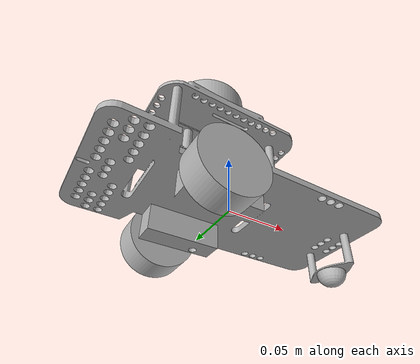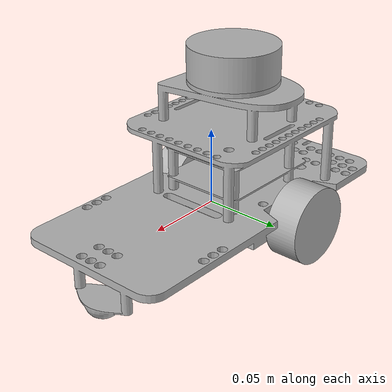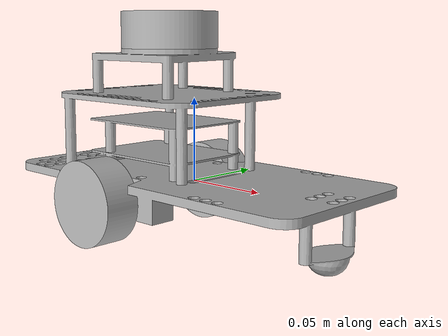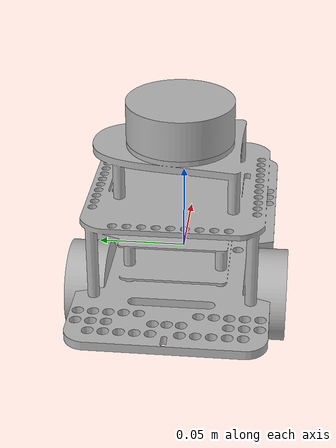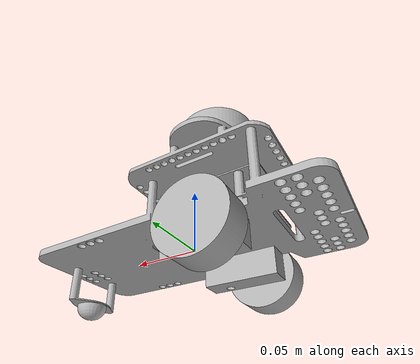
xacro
<?xml version="1.0" ?>
<robot name="gopigo3_rover" xmlns:xacro="http://www.ros.org/wiki/xacro">

<xacro:include filename="$(find gopigo3_rover_description)/urdf/materials.xacro" />
<xacro:include filename="$(find gopigo3_rover_description)/urdf/gopigo3_rover.trans" />
<xacro:include filename="$(find gopigo3_rover_description)/urdf/gopigo3_rover.gazebo" />
<link name="base_link">
  <inertial>
    <origin xyz="-0.006391085122647295 0.0002604442159316909 0.01761468625819067" rpy="0 0 0"/>
    <mass value="0.22460545809495566"/>
    <inertia ixx="0.000359" iyy="0.000776" izz="0.000747" ixy="1e-06" iyz="-2e-06" ixz="6.7e-05"/>
  </inertial>
  <visual>
    <origin xyz="0 0 0" rpy="0 0 0"/>
    <geometry>
      <mesh filename="package://gopigo3_rover_description/meshes/base_link.stl" scale="0.001 0.001 0.001"/>
    </geometry>
    <material name="silver"/>
  </visual>
  <collision>
    <origin xyz="0 0 0" rpy="0 0 0"/>
    <geometry>
      <mesh filename="package://gopigo3_rover_description/meshes/base_link.stl" scale="0.001 0.001 0.001"/>
    </geometry>
  </collision>
</link>

<link name="lidar_1">
  <inertial>
    <origin xyz="2.4267084123771876e-07 -4.718033291354194e-07 0.010999999999999996" rpy="0 0 0"/>
    <mass value="0.0966126190206165"/>
    <inertia ixx="2.5e-05" iyy="2.5e-05" izz="4.2e-05" ixy="-0.0" iyz="-0.0" ixz="0.0"/>
  </inertial>
  <visual>
    <origin xyz="0.021003 -5e-06 -0.079" rpy="0 0 0"/>
    <geometry>
      <mesh filename="package://gopigo3_rover_description/meshes/lidar_1.stl" scale="0.001 0.001 0.001"/>
    </geometry>
    <material name="silver"/>
  </visual>
  <collision>
    <origin xyz="0.021003 -5e-06 -0.079" rpy="0 0 0"/>
    <geometry>
      <mesh filename="package://gopigo3_rover_description/meshes/lidar_1.stl" scale="0.001 0.001 0.001"/>
    </geometry>
  </collision>
</link>

<link name="wheel_right_1">
  <inertial>
    <origin xyz="-3.745601227164719e-07 0.011000396822756907 0.0" rpy="0 0 0"/>
    <mass value="0.0417961099465138"/>
    <inertia ixx="8e-06" iyy="1.4e-05" izz="8e-06" ixy="-0.0" iyz="0.0" ixz="0.0"/>
  </inertial>
  <visual>
    <origin xyz="0.032715 -0.038857 0.01" rpy="0 0 0"/>
    <geometry>
      <mesh filename="package://gopigo3_rover_description/meshes/wheel_right_1.stl" scale="0.001 0.001 0.001"/>
    </geometry>
    <material name="silver"/>
  </visual>
  <collision>
    <origin xyz="0.032715 -0.038857 0.01" rpy="0 0 0"/>
    <geometry>
      <mesh filename="package://gopigo3_rover_description/meshes/wheel_right_1.stl" scale="0.001 0.001 0.001"/>
    </geometry>
  </collision>
</link>

<link name="wheel_left_1">
  <inertial>
    <origin xyz="-3.745601226887163e-07 -0.011000396822756893 8.673617379884035e-18" rpy="0 0 0"/>
    <mass value="0.041796109946513775"/>
    <inertia ixx="8e-06" iyy="1.4e-05" izz="8e-06" ixy="-0.0" iyz="-0.0" ixz="0.0"/>
  </inertial>
  <visual>
    <origin xyz="0.032715 0.038857 0.01" rpy="0 0 0"/>
    <geometry>
      <mesh filename="package://gopigo3_rover_description/meshes/wheel_left_1.stl" scale="0.001 0.001 0.001"/>
    </geometry>
    <material name="silver"/>
  </visual>
  <collision>
    <origin xyz="0.032715 0.038857 0.01" rpy="0 0 0"/>
    <geometry>
      <mesh filename="package://gopigo3_rover_description/meshes/wheel_left_1.stl" scale="0.001 0.001 0.001"/>
    </geometry>
  </collision>
</link>

<joint name="Rigid_1" type="fixed">
  <origin xyz="-0.021003 5e-06 0.079" rpy="0 0 0"/>
  <parent link="base_link"/>
  <child link="lidar_1"/>
</joint>

<joint name="Revolute_4" type="continuous">
  <origin xyz="-0.032715 0.038857 -0.01" rpy="0 0 0"/>
  <parent link="base_link"/>
  <child link="wheel_right_1"/>
  <axis xyz="0.0 1.0 0.0"/>
</joint>

<joint name="Revolute_5" type="continuous">
  <origin xyz="-0.032715 -0.038857 -0.01" rpy="0 0 0"/>
  <parent link="base_link"/>
  <child link="wheel_left_1"/>
  <axis xyz="0.0 -1.0 0.0"/>
</joint>

</robot>

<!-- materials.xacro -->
<robot name="gopigo3_rover" xmlns:xacro="http://www.ros.org/wiki/xacro" >

<material name="silver">
  <color rgba="0.700 0.700 0.700 1.000"/>
</material>

</robot>

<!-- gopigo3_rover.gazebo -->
<robot name="gopigo3_rover" xmlns:xacro="http://www.ros.org/wiki/xacro" >

<xacro:property name="body_color" value="Gazebo/Silver" />

<gazebo>
  <plugin name="control" filename="libgazebo_ros_control.so"/>
</gazebo>
<gazebo reference="base_link">
  <material>${body_color}</material>
  <mu1>0.2</mu1>
  <mu2>0.2</mu2>
  <selfCollide>true</selfCollide>
  <gravity>true</gravity>
</gazebo>

<gazebo reference="lidar_1">
  <material>${body_color}</material>
  <mu1>0.2</mu1>
  <mu2>0.2</mu2>
  <selfCollide>true</selfCollide>
</gazebo>

<gazebo reference="wheel_right_1">
  <material>${body_color}</material>
  <mu1>0.2</mu1>
  <mu2>0.2</mu2>
  <selfCollide>true</selfCollide>
</gazebo>

<gazebo reference="wheel_left_1">
  <material>${body_color}</material>
  <mu1>0.2</mu1>
  <mu2>0.2</mu2>
  <selfCollide>true</selfCollide>
</gazebo>

</robot>
